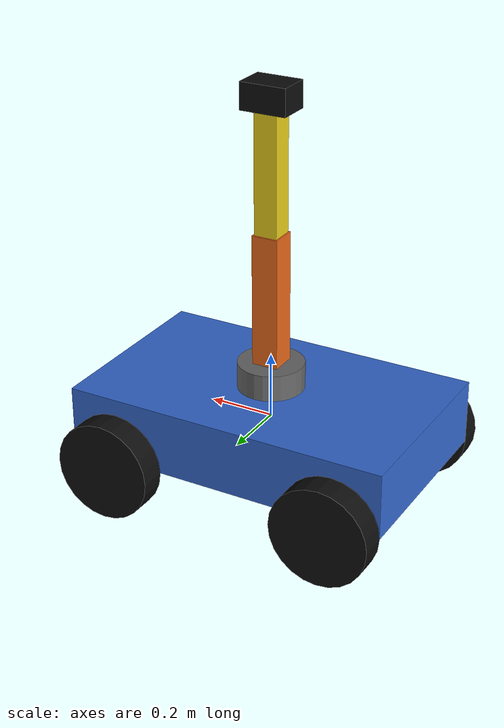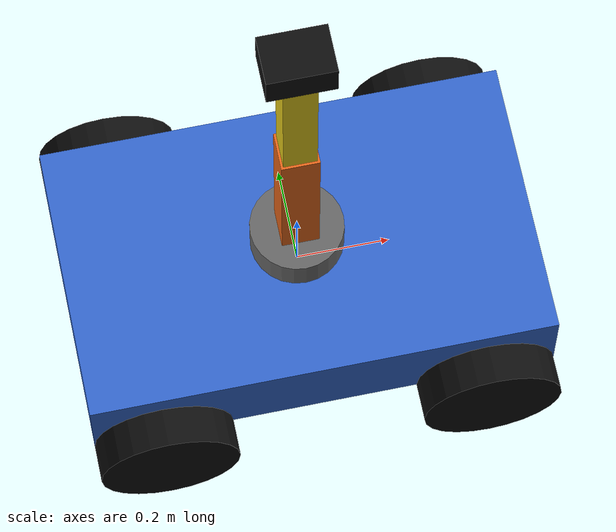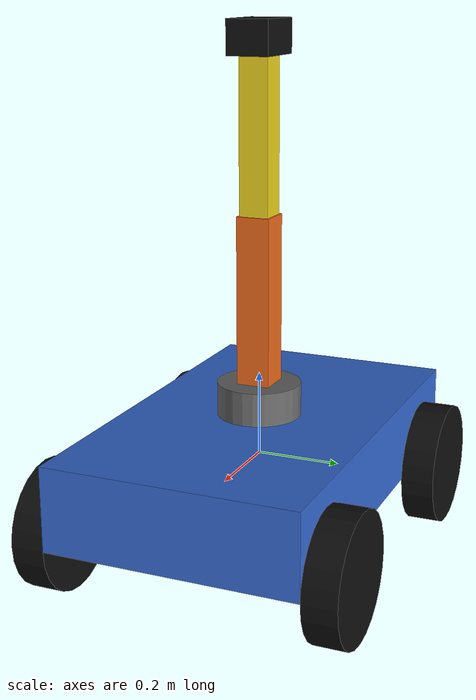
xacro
<?xml version="1.0"?>

<robot
  name="simple_rover"
  xmlns:xacro="http://www.ros.org/wiki/xacro">

  <!-- Geometric parameters -->

  <xacro:property name="body_length" value="1.0"/>
  <xacro:property name="body_width" value="0.6"/>
  <xacro:property name="body_height" value="0.2"/>

  <xacro:property name="wheel_radius" value="0.15"/>
  <xacro:property name="wheel_width" value="0.08"/>

  <xacro:property name="wheel_x" value="0.35"/>
  <xacro:property name="wheel_y" value="0.34"/>
  <xacro:property name="wheel_z" value="-0.10"/>

  <xacro:property name="arm_base_radius" value="0.10"/>
  <xacro:property name="arm_base_height" value="0.08"/>

  <xacro:property name="arm_link_1_length" value="0.40"/>
  <xacro:property name="arm_link_2_length" value="0.36"/>

  <!-- Materials -->

  <material name="blue">
    <color rgba="0.2 0.4 0.8 1.0"/>
  </material>

  <material name="black">
    <color rgba="0.05 0.05 0.05 1.0"/>
  </material>

  <material name="gray">
    <color rgba="0.4 0.4 0.4 1.0"/>
  </material>

  <material name="orange">
    <color rgba="0.9 0.4 0.1 1.0"/>
  </material>

  <material name="yellow">
    <color rgba="0.9 0.8 0.1 1.0"/>
  </material>

  <!-- Wheel macro -->

  <xacro:macro name="wheel" params="name x y">

    <link name="${name}">
      <visual>
        <geometry>
          <cylinder
            radius="${wheel_radius}"
            length="${wheel_width}"/>
        </geometry>

        <material name="black"/>
      </visual>
    </link>

    <joint name="${name}_joint" type="fixed">
      <parent link="base_link"/>
      <child link="${name}"/>

      <origin
        xyz="${x} ${y} ${wheel_z}"
        rpy="1.5708 0 0"/>
    </joint>

  </xacro:macro>

  <!-- Rover body  -->

  <link name="base_link">
    <visual>
      <geometry>
        <box size="${body_length} ${body_width} ${body_height}"/>
      </geometry>

      <material name="blue"/>
    </visual>
  </link>

  <!-- Wheels created from one reusable macro -->

  <xacro:wheel
    name="front_left_wheel"
    x="${wheel_x}"
    y="${wheel_y}"/>

  <xacro:wheel
    name="front_right_wheel"
    x="${wheel_x}"
    y="${-wheel_y}"/>

  <xacro:wheel
    name="rear_left_wheel"
    x="${-wheel_x}"
    y="${wheel_y}"/>

  <xacro:wheel
    name="rear_right_wheel"
    x="${-wheel_x}"
    y="${-wheel_y}"/>

  <!-- Arm base -->

  <link name="arm_base">
    <visual>
      <geometry>
        <cylinder
          radius="${arm_base_radius}"
          length="${arm_base_height}"/>
      </geometry>

      <material name="gray"/>
    </visual>
  </link>

  <joint name="arm_base_joint" type="fixed">
    <parent link="base_link"/>
    <child link="arm_base"/>

    <origin xyz="0 0 0.14" rpy="0 0 0"/>
  </joint>

  <!-- Arm link 1 -->

  <link name="arm_link_1">
    <visual>
      <origin
        xyz="0 0 ${arm_link_1_length / 2.0}"
        rpy="0 0 0"/>

      <geometry>
        <box size="0.08 0.08 ${arm_link_1_length}"/>
      </geometry>

      <material name="orange"/>
    </visual>
  </link>

  <joint name="shoulder_joint" type="revolute">
    <parent link="arm_base"/>
    <child link="arm_link_1"/>

    <origin xyz="0 0 0.04" rpy="0 0 0"/>
    <axis xyz="0 1 0"/>

    <limit
      lower="-1.57"
      upper="1.57"
      effort="20"
      velocity="1.0"/>
  </joint>

  <!-- Arm link 2 -->

  <link name="arm_link_2">
    <visual>
      <origin
        xyz="0 0 ${arm_link_2_length / 2.0}"
        rpy="0 0 0"/>

      <geometry>
        <box size="0.07 0.07 ${arm_link_2_length}"/>
      </geometry>

      <material name="yellow"/>
    </visual>
  </link>

  <joint name="elbow_joint" type="revolute">
    <parent link="arm_link_1"/>
    <child link="arm_link_2"/>

    <origin
      xyz="0 0 ${arm_link_1_length}"
      rpy="0 0 0"/>

    <axis xyz="0 1 0"/>

    <limit
      lower="-1.57"
      upper="1.57"
      effort="20"
      velocity="1.0"/>
  </joint>

  <!-- Camera -->

  <link name="camera_link">
    <visual>
      <geometry>
        <box size="0.14 0.10 0.08"/>
      </geometry>

      <material name="black"/>
    </visual>
  </link>

  <joint name="camera_joint" type="fixed">
    <parent link="arm_link_2"/>
    <child link="camera_link"/>

    <origin
      xyz="0 0 ${arm_link_2_length + 0.04}"
      rpy="0 0 0"/>
  </joint>

</robot>
